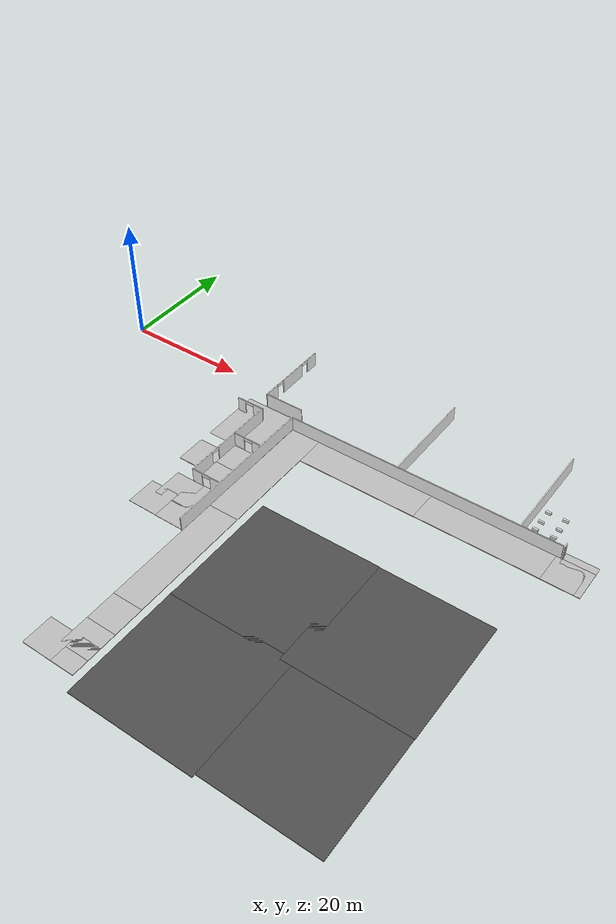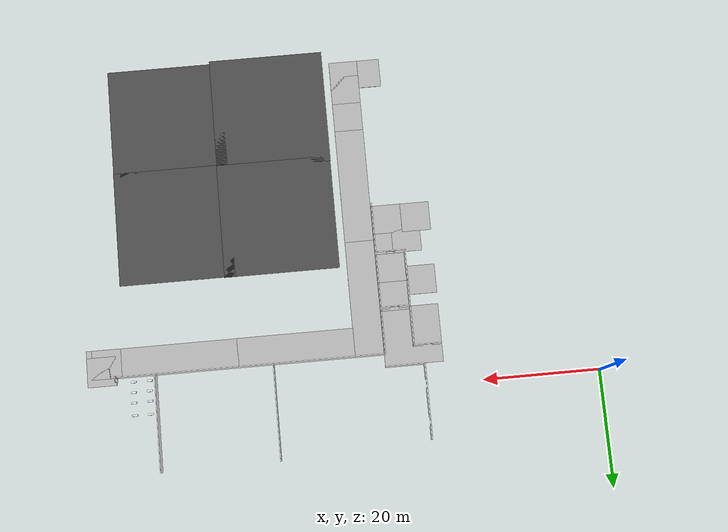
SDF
<sdf version="1.6">
 <world name="default">
  <model name="mainoffice">
   <pose>42.7555 15.4488 0 0 -0 0</pose>
   <link name="Wall_153">
    <collision name="Wall_153_Collision">
     <geometry><box><size>16.5 0.15 2.5</size></box></geometry>
     <pose>0 0 1.25 0 -0 0</pose>
    </collision>
    <visual name="Wall_153_Visual">
     <pose>0 0 1.25 0 -0 0</pose>
     <geometry><box><size>16.5 0.15 2.5</size></box></geometry>
     <material>
      <script>
       <uri>model://office_env/materials/scripts</uri>
       <uri>model://office_env/materials/textures</uri>
       <name>wall</name>
      </script>
      <ambient>1 1 1 1</ambient>
     </material>
    </visual>
    <pose>12.5271 -13.0476 0 0 0 -1.5708</pose>
   </link>
   <link name="Wall_158">
    <collision name="Wall_158_Collision">
     <geometry><box><size>16.5 0.15 2.5</size></box></geometry>
     <pose>0 0 1.25 0 -0 0</pose>
    </collision>
    <visual name="Wall_158_Visual">
     <pose>0 0 1.25 0 -0 0</pose>
     <geometry><box><size>16.5 0.15 2.5</size></box></geometry>
     <material>
      <script>
       <uri>model://office_env/materials/scripts</uri>
       <uri>model://office_env/materials/textures</uri>
       <name>wall</name>
      </script>
      <ambient>1 1 1 1</ambient>
     </material>
    </visual>
    <pose>32.6255 -12.9545 0 0 0 -1.5708</pose>
   </link>
   <link name="Wall_28">
    <collision name="Wall_28_Collision">
     <geometry><box><size>45.75 0.15 2.5</size></box></geometry>
     <pose>0 0 1.25 0 -0 0</pose>
    </collision>
    <visual name="Wall_28_Visual">
     <pose>0 0 1.25 0 -0 0</pose>
     <geometry><box><size>45.75 0.15 2.5</size></box></geometry>
     <material>
      <script>
       <uri>model://office_env/materials/scripts</uri>
       <uri>model://office_env/materials/textures</uri>
       <name>wall</name>
      </script>
      <ambient>1 1 1 1</ambient>
     </material>
    </visual>
    <pose>16.3009 -21.225 0 0 -0 3.14159</pose>
   </link>
   <link name="Wall_29">
    <collision name="Wall_29_Collision">
     <geometry><box><size>26.25 0.15 2.5</size></box></geometry>
     <pose>0 0 1.25 0 -0 0</pose>
    </collision>
    <visual name="Wall_29_Visual">
     <pose>0 0 1.25 0 -0 0</pose>
     <geometry><box><size>26.25 0.15 2.5</size></box></geometry>
     <material>
      <script>
       <uri>model://office_env/materials/scripts</uri>
       <uri>model://office_env/materials/textures</uri>
       <name>wall</name>
      </script>
      <ambient>1 1 1 1</ambient>
     </material>
    </visual>
    <pose>-6.49909 -34.275 0 0 0 -1.5708</pose>
   </link>
   <link name="Wall_33">
    <pose>-11.4991 -33.925 0 0 -0 1.5708</pose>
    <visual name="Wall_33_Visual_0">
     <pose>-2.68364 0 1.25 0 -0 0</pose>
     <geometry><box><size>4.38272 0.15 2.5</size></box></geometry>
     <material>
      <script>
       <uri>model://office_env/materials/scripts</uri>
       <uri>model://office_env/materials/textures</uri>
       <name>wall</name>
      </script>
      <ambient>1 1 1 1</ambient>
     </material>
    </visual>
    <collision name="Wall_33_Collision_0">
     <geometry><box><size>4.38272 0.15 2.5</size></box></geometry>
     <pose>-2.68364 0 1.25 0 -0 0</pose>
    </collision>
    <visual name="Wall_33_Visual_1">
     <pose>2.94136 0 1.25 0 -0 0</pose>
     <geometry><box><size>3.86728 0.15 2.5</size></box></geometry>
     <material>
      <script>
       <uri>model://office_env/materials/scripts</uri>
       <uri>model://office_env/materials/textures</uri>
       <name>wall</name>
      </script>
      <ambient>1 1 1 1</ambient>
     </material>
    </visual>
    <collision name="Wall_33_Collision_1">
     <geometry><box><size>3.86728 0.15 2.5</size></box></geometry>
     <pose>2.94136 0 1.25 0 -0 0</pose>
    </collision>
    <visual name="Wall_33_Visual_2">
     <pose>0.257717 0 2.25 0 -0 0</pose>
     <geometry><box><size>1.5 0.15 0.5</size></box></geometry>
     <material>
      <script>
       <uri>model://office_env/materials/scripts</uri>
       <uri>model://office_env/materials/textures</uri>
       <name>wall</name>
      </script>
      <ambient>1 1 1 1</ambient>
     </material>
    </visual>
    <collision name="Wall_33_Collision_2">
     <geometry><box><size>1.5 0.15 0.5</size></box></geometry>
     <pose>0.257717 0 2.25 0 -0 0</pose>
    </collision>
   </link>
   <link name="Wall_46">
    <collision name="Wall_46_Collision">
     <geometry><box><size>0.5 0.15 2.5</size></box></geometry>
     <pose>0 0 1.25 0 -0 0</pose>
    </collision>
    <visual name="Wall_46_Visual">
     <pose>0 0 1.25 0 -0 0</pose>
     <geometry><box><size>0.5 0.15 2.5</size></box></geometry>
     <material>
      <script>
       <uri>model://office_env/materials/scripts</uri>
       <uri>model://office_env/materials/textures</uri>
       <name>wall</name>
      </script>
      <ambient>1 1 1 1</ambient>
     </material>
    </visual>
    <pose>39.2759 -21.225 0 0 -0 0</pose>
   </link>
   <link name="Wall_48">
    <collision name="Wall_48_Collision">
     <geometry><box><size>1 0.15 2.5</size></box></geometry>
     <pose>0 0 1.25 0 -0 0</pose>
    </collision>
    <visual name="Wall_48_Visual">
     <pose>0 0 1.25 0 -0 0</pose>
     <geometry><box><size>1 0.15 2.5</size></box></geometry>
     <material>
      <script>
       <uri>model://office_env/materials/scripts</uri>
       <uri>model://office_env/materials/textures</uri>
       <name>wall</name>
      </script>
      <ambient>1 1 1 1</ambient>
     </material>
    </visual>
    <pose>39.3509 -20.95 0 0 0 -1.5708</pose>
   </link>
   <link name="Wall_53">
    <pose>-9.07409 -38.725 0 0 -0 0</pose>
    <visual name="Wall_53_Visual_0">
     <pose>-1.62716 0 1.25 0 -0 0</pose>
     <geometry><box><size>1.74568 0.15 2.5</size></box></geometry>
     <material>
      <script>
       <uri>model://office_env/materials/scripts</uri>
       <uri>model://office_env/materials/textures</uri>
       <name>wall</name>
      </script>
      <ambient>1 1 1 1</ambient>
     </material>
    </visual>
    <collision name="Wall_53_Collision_0">
     <geometry><box><size>1.74568 0.15 2.5</size></box></geometry>
     <pose>-1.62716 0 1.25 0 -0 0</pose>
    </collision>
    <visual name="Wall_53_Visual_1">
     <pose>1.62284 0 1.25 0 -0 0</pose>
     <geometry><box><size>1.75432 0.15 2.5</size></box></geometry>
     <material>
      <script>
       <uri>model://office_env/materials/scripts</uri>
       <uri>model://office_env/materials/textures</uri>
       <name>wall</name>
      </script>
      <ambient>1 1 1 1</ambient>
     </material>
    </visual>
    <collision name="Wall_53_Collision_1">
     <geometry><box><size>1.75432 0.15 2.5</size></box></geometry>
     <pose>1.62284 0 1.25 0 -0 0</pose>
    </collision>
    <visual name="Wall_53_Visual_2">
     <pose>-0.00432 0 2.25 0 -0 0</pose>
     <geometry><box><size>1.5 0.15 0.5</size></box></geometry>
     <material>
      <script>
       <uri>model://office_env/materials/scripts</uri>
       <uri>model://office_env/materials/textures</uri>
       <name>wall</name>
      </script>
      <ambient>1 1 1 1</ambient>
     </material>
    </visual>
    <collision name="Wall_53_Collision_2">
     <geometry><box><size>1.5 0.15 0.5</size></box></geometry>
     <pose>-0.00432 0 2.25 0 -0 0</pose>
    </collision>
   </link>
   <link name="Wall_56">
    <pose>-9.07409 -29.125 0 0 -0 0</pose>
    <visual name="Wall_56_Visual_0">
     <pose>-1.53426 0 1.25 0 -0 0</pose>
     <geometry><box><size>1.93148 0.15 2.5</size></box></geometry>
     <material>
      <script>
       <uri>model://office_env/materials/scripts</uri>
       <uri>model://office_env/materials/textures</uri>
       <name>wall</name>
      </script>
      <ambient>1 1 1 1</ambient>
     </material>
    </visual>
    <collision name="Wall_56_Collision_0">
     <geometry><box><size>1.93148 0.15 2.5</size></box></geometry>
     <pose>-1.53426 0 1.25 0 -0 0</pose>
    </collision>
    <visual name="Wall_56_Visual_1">
     <pose>1.71574 0 1.25 0 -0 0</pose>
     <geometry><box><size>1.56852 0.15 2.5</size></box></geometry>
     <material>
      <script>
       <uri>model://office_env/materials/scripts</uri>
       <uri>model://office_env/materials/textures</uri>
       <name>wall</name>
      </script>
      <ambient>1 1 1 1</ambient>
     </material>
    </visual>
    <collision name="Wall_56_Collision_1">
     <geometry><box><size>1.56852 0.15 2.5</size></box></geometry>
     <pose>1.71574 0 1.25 0 -0 0</pose>
    </collision>
    <visual name="Wall_56_Visual_2">
     <pose>0.181485 0 2.25 0 -0 0</pose>
     <geometry><box><size>1.5 0.15 0.5</size></box></geometry>
     <material>
      <script>
       <uri>model://office_env/materials/scripts</uri>
       <uri>model://office_env/materials/textures</uri>
       <name>wall</name>
      </script>
      <ambient>1 1 1 1</ambient>
     </material>
    </visual>
    <collision name="Wall_56_Collision_2">
     <geometry><box><size>1.5 0.15 0.5</size></box></geometry>
     <pose>0.181485 0 2.25 0 -0 0</pose>
    </collision>
   </link>
   <link name="Wall_59">
    <collision name="Wall_59_Collision">
     <geometry><box><size>7 0.15 2.5</size></box></geometry>
     <pose>0 0 1.25 0 -0 0</pose>
    </collision>
    <visual name="Wall_59_Visual">
     <pose>0 0 1.25 0 -0 0</pose>
     <geometry><box><size>7 0.15 2.5</size></box></geometry>
     <material>
      <script>
       <uri>model://office_env/materials/scripts</uri>
       <uri>model://office_env/materials/textures</uri>
       <name>wall</name>
      </script>
      <ambient>1 1 1 1</ambient>
     </material>
    </visual>
    <pose>-11.4991 -25.7 0 0 -0 1.5708</pose>
   </link>
   <link name="Wall_60">
    <pose>-13.7991 -22.275 0 0 -0 3.14159</pose>
    <visual name="Wall_60_Visual_0">
     <pose>-1.46064 0 1.25 0 -0 0</pose>
     <geometry><box><size>1.82871 0.15 2.5</size></box></geometry>
     <material>
      <script>
       <uri>model://office_env/materials/scripts</uri>
       <uri>model://office_env/materials/textures</uri>
       <name>wall</name>
      </script>
      <ambient>1 1 1 1</ambient>
     </material>
    </visual>
    <collision name="Wall_60_Collision_0">
     <geometry><box><size>1.82871 0.15 2.5</size></box></geometry>
     <pose>-1.46064 0 1.25 0 -0 0</pose>
    </collision>
    <visual name="Wall_60_Visual_1">
     <pose>1.66436 0 1.25 0 -0 0</pose>
     <geometry><box><size>1.42129 0.15 2.5</size></box></geometry>
     <material>
      <script>
       <uri>model://office_env/materials/scripts</uri>
       <uri>model://office_env/materials/textures</uri>
       <name>wall</name>
      </script>
      <ambient>1 1 1 1</ambient>
     </material>
    </visual>
    <collision name="Wall_60_Collision_1">
     <geometry><box><size>1.42129 0.15 2.5</size></box></geometry>
     <pose>1.66436 0 1.25 0 -0 0</pose>
    </collision>
    <visual name="Wall_60_Visual_2">
     <pose>0.203711 0 2.25 0 -0 0</pose>
     <geometry><box><size>1.5 0.15 0.5</size></box></geometry>
     <material>
      <script>
       <uri>model://office_env/materials/scripts</uri>
       <uri>model://office_env/materials/textures</uri>
       <name>wall</name>
      </script>
      <ambient>1 1 1 1</ambient>
     </material>
    </visual>
    <collision name="Wall_60_Collision_2">
     <geometry><box><size>1.5 0.15 0.5</size></box></geometry>
     <pose>0.203711 0 2.25 0 -0 0</pose>
    </collision>
   </link>
   <link name="Wall_81">
    <collision name="Wall_81_Collision">
     <geometry><box><size>6.75 0.15 2.5</size></box></geometry>
     <pose>0 0 1.25 0 -0 0</pose>
    </collision>
    <visual name="Wall_81_Visual">
     <pose>0 0 1.25 0 -0 0</pose>
     <geometry><box><size>6.75 0.15 2.5</size></box></geometry>
     <material>
      <script>
       <uri>model://office_env/materials/scripts</uri>
       <uri>model://office_env/materials/textures</uri>
       <name>wall</name>
      </script>
      <ambient>1 1 1 1</ambient>
     </material>
    </visual>
    <pose>-9.72161 -19.0475 0 0 -0 3.14159</pose>
   </link>
   <link name="Wall_82">
    <pose>-13.0216 -12.6225 0 0 -0 1.5708</pose>
    <visual name="Wall_82_Visual_0">
     <pose>-5.11472 0 1.25 0 -0 0</pose>
     <geometry><box><size>2.77056 0.15 2.5</size></box></geometry>
     <material>
      <script>
       <uri>model://office_env/materials/scripts</uri>
       <uri>model://office_env/materials/textures</uri>
       <name>wall</name>
      </script>
      <ambient>1 1 1 1</ambient>
     </material>
    </visual>
    <collision name="Wall_82_Collision_0">
     <geometry><box><size>2.77056 0.15 2.5</size></box></geometry>
     <pose>-5.11472 0 1.25 0 -0 0</pose>
    </collision>
    <visual name="Wall_82_Visual_1">
     <pose>0.250774 0 1.25 0 -0 0</pose>
     <geometry><box><size>4.96043 0.15 2.5</size></box></geometry>
     <material>
      <script>
       <uri>model://office_env/materials/scripts</uri>
       <uri>model://office_env/materials/textures</uri>
       <name>wall</name>
      </script>
      <ambient>1 1 1 1</ambient>
     </material>
    </visual>
    <collision name="Wall_82_Collision_1">
     <geometry><box><size>4.96043 0.15 2.5</size></box></geometry>
     <pose>0.250774 0 1.25 0 -0 0</pose>
    </collision>
    <visual name="Wall_82_Visual_2">
     <pose>5.36549 0 1.25 0 -0 0</pose>
     <geometry><box><size>2.26901 0.15 2.5</size></box></geometry>
     <material>
      <script>
       <uri>model://office_env/materials/scripts</uri>
       <uri>model://office_env/materials/textures</uri>
       <name>wall</name>
      </script>
      <ambient>1 1 1 1</ambient>
     </material>
    </visual>
    <collision name="Wall_82_Collision_2">
     <geometry><box><size>2.26901 0.15 2.5</size></box></geometry>
     <pose>5.36549 0 1.25 0 -0 0</pose>
    </collision>
    <visual name="Wall_82_Visual_3">
     <pose>-2.97944 0 2.25 0 -0 0</pose>
     <geometry><box><size>1.5 0.15 0.5</size></box></geometry>
     <material>
      <script>
       <uri>model://office_env/materials/scripts</uri>
       <uri>model://office_env/materials/textures</uri>
       <name>wall</name>
      </script>
      <ambient>1 1 1 1</ambient>
     </material>
    </visual>
    <collision name="Wall_82_Collision_3">
     <geometry><box><size>1.5 0.15 0.5</size></box></geometry>
     <pose>-2.97944 0 2.25 0 -0 0</pose>
    </collision>
    <visual name="Wall_82_Visual_4">
     <pose>3.48099 0 2.25 0 -0 0</pose>
     <geometry><box><size>1.5 0.15 0.5</size></box></geometry>
     <material>
      <script>
       <uri>model://office_env/materials/scripts</uri>
       <uri>model://office_env/materials/textures</uri>
       <name>wall</name>
      </script>
      <ambient>1 1 1 1</ambient>
     </material>
    </visual>
    <collision name="Wall_82_Collision_4">
     <geometry><box><size>1.5 0.15 0.5</size></box></geometry>
     <pose>3.48099 0 2.25 0 -0 0</pose>
    </collision>
   </link>
   <static>1</static>
  </model>
  <model name="asphalt_plane">
   <static>1</static>
   <link name="link">
    <collision name="collision"><geometry><box><size>20 20 0.1</size></box></geometry></collision>
    <visual name="visual">
     <cast_shadows>0</cast_shadows>
     <geometry><box><size>20 20 0.1</size></box></geometry>
     <material>
      <script>
       <uri>model://asphalt_plane/materials/scripts</uri>
       <uri>model://asphalt_plane/materials/textures</uri>
       <name>vrc/asphalt</name>
      </script>
     </material>
    </visual>
   </link>
   <pose>70.7475 -31.5972 0 0 -0 0</pose>
  </model>
  <model name="asphalt_plane_14">
   <static>1</static>
   <link name="link">
    <collision name="collision"><geometry><box><size>20 20 0.1</size></box></geometry></collision>
    <visual name="visual">
     <cast_shadows>0</cast_shadows>
     <geometry><box><size>20 20 0.1</size></box></geometry>
     <material>
      <script>
       <uri>model://asphalt_plane/materials/scripts</uri>
       <uri>model://asphalt_plane/materials/textures</uri>
       <name>vrc/asphalt</name>
      </script>
     </material>
    </visual>
   </link>
   <pose>52.6349 -31.5293 0 0 -0 0</pose>
  </model>
  <model name="asphalt_plane_15">
   <static>1</static>
   <link name="link">
    <collision name="collision"><geometry><box><size>20 20 0.1</size></box></geometry></collision>
    <visual name="visual">
     <cast_shadows>0</cast_shadows>
     <geometry><box><size>20 20 0.1</size></box></geometry>
     <material>
      <script>
       <uri>model://asphalt_plane/materials/scripts</uri>
       <uri>model://asphalt_plane/materials/textures</uri>
       <name>vrc/asphalt</name>
      </script>
     </material>
    </visual>
   </link>
   <pose>52.5808 -50.6415 0 0 -0 0</pose>
  </model>
  <model name="asphalt_plane_16">
   <static>1</static>
   <link name="link">
    <collision name="collision"><geometry><box><size>20 20 0.1</size></box></geometry></collision>
    <visual name="visual">
     <cast_shadows>0</cast_shadows>
     <geometry><box><size>20 20 0.1</size></box></geometry>
     <material>
      <script>
       <uri>model://asphalt_plane/materials/scripts</uri>
       <uri>model://asphalt_plane/materials/textures</uri>
       <name>vrc/asphalt</name>
      </script>
     </material>
    </visual>
   </link>
   <pose>70.7064 -50.1212 0 0 -0 0</pose>
  </model>
  <model name="Box_36x15W">
   <link name="Wall">
    <pose>0 0 0.1985 0 -0 0</pose>
    <inertial>
     <mass>5</mass>
     <inertia><ixx>0.1022</ixx><iyy>0.4107</iyy><izz>0.3815</izz><ixy>0</ixy><ixz>0</ixz><iyz>0</iyz></inertia>
    </inertial>
    <collision name="Wall_Collision"><geometry><box><size>0.91 0.296 0.397</size></box></geometry></collision>
    <visual name="Wall_Visual">
     <geometry><box><size>0.91 0.296 0.397</size></box></geometry>
     <material>
      <script>
       <uri>model://office_env/materials/scripts</uri>
       <uri>model://office_env/materials/textures</uri>
       <name>wall</name>
      </script>
      <ambient>1 1 1 1</ambient>
     </material>
    </visual>
   </link>
   <static>1</static>
   <pose>76.5783 -4.8925 0 0 -0 0</pose>
  </model>
  <model name="Box_36x15W_0">
   <link name="Wall">
    <pose>0 0 0.1985 0 -0 0</pose>
    <inertial>
     <mass>5</mass>
     <inertia><ixx>0.1022</ixx><iyy>0.4107</iyy><izz>0.3815</izz><ixy>0</ixy><ixz>0</ixz><iyz>0</iyz></inertia>
    </inertial>
    <collision name="Wall_Collision"><geometry><box><size>0.91 0.296 0.397</size></box></geometry></collision>
    <visual name="Wall_Visual">
     <geometry><box><size>0.91 0.296 0.397</size></box></geometry>
     <material>
      <script>
       <uri>model://office_env/materials/scripts</uri>
       <uri>model://office_env/materials/textures</uri>
       <name>wall</name>
      </script>
      <ambient>1 1 1 1</ambient>
     </material>
    </visual>
   </link>
   <static>1</static>
   <pose>79.3292 -4.88719 0 0 -0 0</pose>
  </model>
  <model name="Box_36x15W_1">
   <link name="Wall">
    <pose>0 0 0.1985 0 -0 0</pose>
    <inertial>
     <mass>5</mass>
     <inertia><ixx>0.1022</ixx><iyy>0.4107</iyy><izz>0.3815</izz><ixy>0</ixy><ixz>0</ixz><iyz>0</iyz></inertia>
    </inertial>
    <collision name="Wall_Collision"><geometry><box><size>0.91 0.296 0.397</size></box></geometry></collision>
    <visual name="Wall_Visual">
     <geometry><box><size>0.91 0.296 0.397</size></box></geometry>
     <material>
      <script>
       <uri>model://office_env/materials/scripts</uri>
       <uri>model://office_env/materials/textures</uri>
       <name>wall</name>
      </script>
      <ambient>1 1 1 1</ambient>
     </material>
    </visual>
   </link>
   <static>1</static>
   <pose>76.6481 -3.15959 0 0 -0 0</pose>
  </model>
  <model name="Box_36x15W_clone">
   <link name="Wall">
    <pose>0 0 0.1985 0 -0 0</pose>
    <inertial>
     <mass>5</mass>
     <inertia><ixx>0.1022</ixx><iyy>0.4107</iyy><izz>0.3815</izz><ixy>0</ixy><ixz>0</ixz><iyz>0</iyz></inertia>
    </inertial>
    <collision name="Wall_Collision"><geometry><box><size>0.91 0.296 0.397</size></box></geometry></collision>
    <visual name="Wall_Visual">
     <geometry><box><size>0.91 0.296 0.397</size></box></geometry>
     <material>
      <script>
       <uri>model://office_env/materials/scripts</uri>
       <uri>model://office_env/materials/textures</uri>
       <name>wall</name>
      </script>
      <ambient>1 1 1 1</ambient>
     </material>
    </visual>
   </link>
   <static>1</static>
   <pose>79.4111 -3.09991 0 0 -0 0</pose>
  </model>
  <model name="Box_36x15W_clone_0">
   <link name="Wall">
    <pose>0 0 0.1985 0 -0 0</pose>
    <inertial>
     <mass>5</mass>
     <inertia><ixx>0.1022</ixx><iyy>0.4107</iyy><izz>0.3815</izz><ixy>0</ixy><ixz>0</ixz><iyz>0</iyz></inertia>
    </inertial>
    <collision name="Wall_Collision"><geometry><box><size>0.91 0.296 0.397</size></box></geometry></collision>
    <visual name="Wall_Visual">
     <geometry><box><size>0.91 0.296 0.397</size></box></geometry>
     <material>
      <script>
       <uri>model://office_env/materials/scripts</uri>
       <uri>model://office_env/materials/textures</uri>
       <name>wall</name>
      </script>
      <ambient>1 1 1 1</ambient>
     </material>
    </visual>
   </link>
   <static>1</static>
   <pose>76.6853 -1.41646 0 0 -0 0</pose>
  </model>
  <model name="Box_36x15W_clone_1">
   <link name="Wall">
    <pose>0 0 0.1985 0 -0 0</pose>
    <inertial>
     <mass>5</mass>
     <inertia><ixx>0.1022</ixx><iyy>0.4107</iyy><izz>0.3815</izz><ixy>0</ixy><ixz>0</ixz><iyz>0</iyz></inertia>
    </inertial>
    <collision name="Wall_Collision"><geometry><box><size>0.91 0.296 0.397</size></box></geometry></collision>
    <visual name="Wall_Visual">
     <geometry><box><size>0.91 0.296 0.397</size></box></geometry>
     <material>
      <script>
       <uri>model://office_env/materials/scripts</uri>
       <uri>model://office_env/materials/textures</uri>
       <name>wall</name>
      </script>
      <ambient>1 1 1 1</ambient>
     </material>
    </visual>
   </link>
   <static>1</static>
   <pose>79.4333 -1.32899 0 0 -0 0</pose>
  </model>
  <model name="Box_36x15W_clone_2">
   <link name="Wall">
    <pose>0 0 0.1985 0 -0 0</pose>
    <inertial>
     <mass>5</mass>
     <inertia><ixx>0.1022</ixx><iyy>0.4107</iyy><izz>0.3815</izz><ixy>0</ixy><ixz>0</ixz><iyz>0</iyz></inertia>
    </inertial>
    <collision name="Wall_Collision"><geometry><box><size>0.91 0.296 0.397</size></box></geometry></collision>
    <visual name="Wall_Visual">
     <geometry><box><size>0.91 0.296 0.397</size></box></geometry>
     <material>
      <script>
       <uri>model://office_env/materials/scripts</uri>
       <uri>model://office_env/materials/textures</uri>
       <name>wall</name>
      </script>
      <ambient>1 1 1 1</ambient>
     </material>
    </visual>
   </link>
   <static>1</static>
   <pose>76.7054 0.802933 0 0 -0 0</pose>
  </model>
  <model name="Box_36x15W_clone_3">
   <link name="Wall">
    <pose>0 0 0.1985 0 -0 0</pose>
    <inertial>
     <mass>5</mass>
     <inertia><ixx>0.1022</ixx><iyy>0.4107</iyy><izz>0.3815</izz><ixy>0</ixy><ixz>0</ixz><iyz>0</iyz></inertia>
    </inertial>
    <collision name="Wall_Collision"><geometry><box><size>0.91 0.296 0.397</size></box></geometry></collision>
    <visual name="Wall_Visual">
     <geometry><box><size>0.91 0.296 0.397</size></box></geometry>
     <material>
      <script>
       <uri>model://office_env/materials/scripts</uri>
       <uri>model://office_env/materials/textures</uri>
       <name>wall</name>
      </script>
      <ambient>1 1 1 1</ambient>
     </material>
    </visual>
   </link>
   <static>1</static>
   <pose>79.4097 0.802084 0 0 -0 0</pose>
  </model>
  <model name="Floor_36">
   <link name="main">
    <pose>0 0 0.01 0 -0 0</pose>
    <collision name="main_Collision"><geometry><box><size>5 5 0.05</size></box></geometry></collision>
    <visual name="main_Visual">
     <geometry><box><size>5 5 0.05</size></box></geometry>
     <material>
      <script>
       <uri>model://Floor_verysmall/materials/scripts</uri>
       <uri>model://Floor_verysmall/materials/textures</uri>
       <name>floor</name>
      </script>
     </material>
    </visual>
   </link>
   <static>1</static>
   <pose>33.79 -20.7523 0 0 -0 0</pose>
  </model>
  <model name="Floor_37">
   <link name="main">
    <pose>0 0 0.01 0 -0 0</pose>
    <collision name="main_Collision"><geometry><box><size>5 5 0.05</size></box></geometry></collision>
    <visual name="main_Visual">
     <geometry><box><size>5 5 0.05</size></box></geometry>
     <material>
      <script>
       <uri>model://Floor_verysmall/materials/scripts</uri>
       <uri>model://Floor_verysmall/materials/textures</uri>
       <name>floor</name>
      </script>
     </material>
    </visual>
   </link>
   <static>1</static>
   <pose>33.7875 -15.7631 0 0 -0 0</pose>
  </model>
  <model name="Floor_39">
   <link name="main">
    <pose>0 0 0.01 0 -0 0</pose>
    <collision name="main_Collision"><geometry><box><size>10 10 0.05</size></box></geometry></collision>
    <visual name="main_Visual">
     <geometry><box><size>10 10 0.05</size></box></geometry>
     <material>
      <script>
       <uri>model://Floor_small/materials/scripts</uri>
       <uri>model://Floor_small/materials/textures</uri>
       <name>floor</name>
      </script>
     </material>
    </visual>
   </link>
   <static>1</static>
   <pose>31.3575 -8.76884 0 0 -0 0</pose>
  </model>
  <model name="Floor_43">
   <link name="main">
    <pose>0 0 0.01 0 -0 0</pose>
    <collision name="main_Collision"><geometry><box><size>5 5 0.05</size></box></geometry></collision>
    <visual name="main_Visual">
     <geometry><box><size>5 5 0.05</size></box></geometry>
     <material>
      <script>
       <uri>model://Floor_verysmall/materials/scripts</uri>
       <uri>model://Floor_verysmall/materials/textures</uri>
       <name>floor</name>
      </script>
     </material>
    </visual>
   </link>
   <static>1</static>
   <pose>33.7535 -25.695 0 0 -0 0</pose>
  </model>
  <model name="Floor_44">
   <link name="main">
    <pose>0 0 0.01 0 -0 0</pose>
    <collision name="main_Collision"><geometry><box><size>5 5 0.05</size></box></geometry></collision>
    <visual name="main_Visual">
     <geometry><box><size>5 5 0.05</size></box></geometry>
     <material>
      <script>
       <uri>model://Floor_verysmall/materials/scripts</uri>
       <uri>model://Floor_verysmall/materials/textures</uri>
       <name>floor</name>
      </script>
     </material>
    </visual>
   </link>
   <static>1</static>
   <pose>30.6656 -25.8356 0 0 -0 0</pose>
  </model>
  <model name="Floor_45">
   <link name="main">
    <pose>0 0 0.01 0 -0 0</pose>
    <collision name="main_Collision"><geometry><box><size>5 5 0.05</size></box></geometry></collision>
    <visual name="main_Visual">
     <geometry><box><size>5 5 0.05</size></box></geometry>
     <material>
      <script>
       <uri>model://Floor_verysmall/materials/scripts</uri>
       <uri>model://Floor_verysmall/materials/textures</uri>
       <name>floor</name>
      </script>
     </material>
    </visual>
   </link>
   <static>1</static>
   <pose>33.7308 -29.3403 0 0 -0 0</pose>
  </model>
  <model name="Floor_46">
   <link name="main">
    <pose>0 0 0.01 0 -0 0</pose>
    <collision name="main_Collision"><geometry><box><size>5 5 0.05</size></box></geometry></collision>
    <visual name="main_Visual">
     <geometry><box><size>5 5 0.05</size></box></geometry>
     <material>
      <script>
       <uri>model://Floor_verysmall/materials/scripts</uri>
       <uri>model://Floor_verysmall/materials/textures</uri>
       <name>floor</name>
      </script>
     </material>
    </visual>
   </link>
   <static>1</static>
   <pose>28.7442 -29.3242 0 0 -0 0</pose>
  </model>
  <model name="outdoor_plane_8">
   <static>1</static>
   <link name="link">
    <collision name="collision"><geometry><box><size>5 20 0.1</size></box></geometry></collision>
    <visual name="visual">
     <cast_shadows>0</cast_shadows>
     <geometry><box><size>5 20 0.1</size></box></geometry>
     <material>
      <script>
       <uri>model://outdoor_plane/materials/scripts</uri>
       <uri>model://outdoor_plane/materials/textures</uri>
       <name>outds/Image</name>
      </script>
     </material>
    </visual>
   </link>
   <pose>38.8777 -15.8318 0 0 -0 0</pose>
  </model>
  <model name="outdoor_plane_9">
   <static>1</static>
   <link name="link">
    <collision name="collision"><geometry><box><size>5 20 0.1</size></box></geometry></collision>
    <visual name="visual">
     <cast_shadows>0</cast_shadows>
     <geometry><box><size>5 20 0.1</size></box></geometry>
     <material>
      <script>
       <uri>model://outdoor_plane/materials/scripts</uri>
       <uri>model://outdoor_plane/materials/textures</uri>
       <name>outds/Image</name>
      </script>
     </material>
    </visual>
   </link>
   <pose>38.8798 -35.8023 0 0 -0 0</pose>
  </model>
  <model name="outdoor_plane_10">
   <static>1</static>
   <link name="link">
    <collision name="collision"><geometry><box><size>5 5 0.1</size></box></geometry></collision>
    <visual name="visual">
     <cast_shadows>0</cast_shadows>
     <geometry><box><size>5 5 0.1</size></box></geometry>
     <material>
      <script>
       <uri>model://outdoor_planesmall/materials/scripts</uri>
       <uri>model://outdoor_planesmall/materials/textures</uri>
       <name>outdss/Image</name>
      </script>
     </material>
    </visual>
   </link>
   <pose>38.8907 -48.2873 0 0 -0 0</pose>
  </model>
  <model name="outdoor_plane_11">
   <static>1</static>
   <link name="link">
    <collision name="collision"><geometry><box><size>5 5 0.1</size></box></geometry></collision>
    <visual name="visual">
     <cast_shadows>0</cast_shadows>
     <geometry><box><size>5 5 0.1</size></box></geometry>
     <material>
      <script>
       <uri>model://outdoor_planesmall/materials/scripts</uri>
       <uri>model://outdoor_planesmall/materials/textures</uri>
       <name>outdss/Image</name>
      </script>
     </material>
    </visual>
   </link>
   <pose>38.8857 -53.2696 0 0 -0 0</pose>
  </model>
  <model name="outdoor_plane_12">
   <static>1</static>
   <link name="link">
    <collision name="collision"><geometry><box><size>5 5 0.1</size></box></geometry></collision>
    <visual name="visual">
     <cast_shadows>0</cast_shadows>
     <geometry><box><size>5 5 0.1</size></box></geometry>
     <material>
      <script>
       <uri>model://outdoor_planesmall/materials/scripts</uri>
       <uri>model://outdoor_planesmall/materials/textures</uri>
       <name>outdss/Image</name>
      </script>
     </material>
    </visual>
   </link>
   <pose>34.9956 -55.9437 0 0 -0 0</pose>
  </model>
  <model name="outdoor_plane_13">
   <static>1</static>
   <link name="link">
    <collision name="collision"><geometry><box><size>5 5 0.1</size></box></geometry></collision>
    <visual name="visual">
     <cast_shadows>0</cast_shadows>
     <geometry><box><size>5 5 0.1</size></box></geometry>
     <material>
      <script>
       <uri>model://outdoor_planesmall/materials/scripts</uri>
       <uri>model://outdoor_planesmall/materials/textures</uri>
       <name>outdss/Image</name>
      </script>
     </material>
    </visual>
   </link>
   <pose>38.8783 -55.9475 0 0 -0 0</pose>
  </model>
  <model name="outdoor_plane_clone_clone_clone_clone_clone">
   <static>1</static>
   <link name="link">
    <collision name="collision"><geometry><box><size>5 20 0.1</size></box></geometry></collision>
    <visual name="visual">
     <cast_shadows>0</cast_shadows>
     <geometry><box><size>5 20 0.1</size></box></geometry>
     <material>
      <script>
       <uri>model://outdoor_plane/materials/scripts</uri>
       <uri>model://outdoor_plane/materials/textures</uri>
       <name>outds/Image</name>
      </script>
     </material>
    </visual>
   </link>
   <pose>51.323 -8.31588 0 0 -0 1.57079</pose>
  </model>
  <model name="outdoor_plane_clone_clone_clone_clone_clone_0">
   <static>1</static>
   <link name="link">
    <collision name="collision"><geometry><box><size>5 20 0.1</size></box></geometry></collision>
    <visual name="visual">
     <cast_shadows>0</cast_shadows>
     <geometry><box><size>5 20 0.1</size></box></geometry>
     <material>
      <script>
       <uri>model://outdoor_plane/materials/scripts</uri>
       <uri>model://outdoor_plane/materials/textures</uri>
       <name>outds/Image</name>
      </script>
     </material>
    </visual>
   </link>
   <pose>71.2527 -8.29295 0 0 -0 1.57079</pose>
  </model>
  <model name="outdoor_plane_15">
   <static>1</static>
   <link name="link">
    <collision name="collision"><geometry><box><size>5 5 0.1</size></box></geometry></collision>
    <visual name="visual">
     <cast_shadows>0</cast_shadows>
     <geometry><box><size>5 5 0.1</size></box></geometry>
     <material>
      <script>
       <uri>model://outdoor_planesmall/materials/scripts</uri>
       <uri>model://outdoor_planesmall/materials/textures</uri>
       <name>outdss/Image</name>
      </script>
     </material>
    </visual>
   </link>
   <pose>84.6813 -7.08458 0 0 -0 0</pose>
  </model>
  <model name="outdoor_plane_16">
   <static>1</static>
   <link name="link">
    <collision name="collision"><geometry><box><size>5 5 0.1</size></box></geometry></collision>
    <visual name="visual">
     <cast_shadows>0</cast_shadows>
     <geometry><box><size>5 5 0.1</size></box></geometry>
     <material>
      <script>
       <uri>model://outdoor_planesmall/materials/scripts</uri>
       <uri>model://outdoor_planesmall/materials/textures</uri>
       <name>outdss/Image</name>
      </script>
     </material>
    </visual>
   </link>
   <pose>83.7447 -8.30883 0 0 -0 0</pose>
  </model>
  <model name="outdoor_plane_17">
   <static>1</static>
   <link name="link">
    <collision name="collision"><geometry><box><size>5 5 0.1</size></box></geometry></collision>
    <visual name="visual">
     <cast_shadows>0</cast_shadows>
     <geometry><box><size>5 5 0.1</size></box></geometry>
     <material>
      <script>
       <uri>model://outdoor_planesmall/materials/scripts</uri>
       <uri>model://outdoor_planesmall/materials/textures</uri>
       <name>outdss/Image</name>
      </script>
     </material>
    </visual>
   </link>
   <pose>84.6743 -8.31438 0 0 -0 0</pose>
  </model>
  <model name="outdoor_plane_25">
   <static>1</static>
   <link name="link">
    <collision name="collision"><geometry><box><size>5 5 0.1</size></box></geometry></collision>
    <visual name="visual">
     <cast_shadows>0</cast_shadows>
     <geometry><box><size>5 5 0.1</size></box></geometry>
     <material>
      <script>
       <uri>model://outdoor_planesmall/materials/scripts</uri>
       <uri>model://outdoor_planesmall/materials/textures</uri>
       <name>outdss/Image</name>
      </script>
     </material>
    </visual>
   </link>
   <pose>28.798 -18.2335 0 0 -0 0</pose>
  </model>
 </world>
</sdf>
